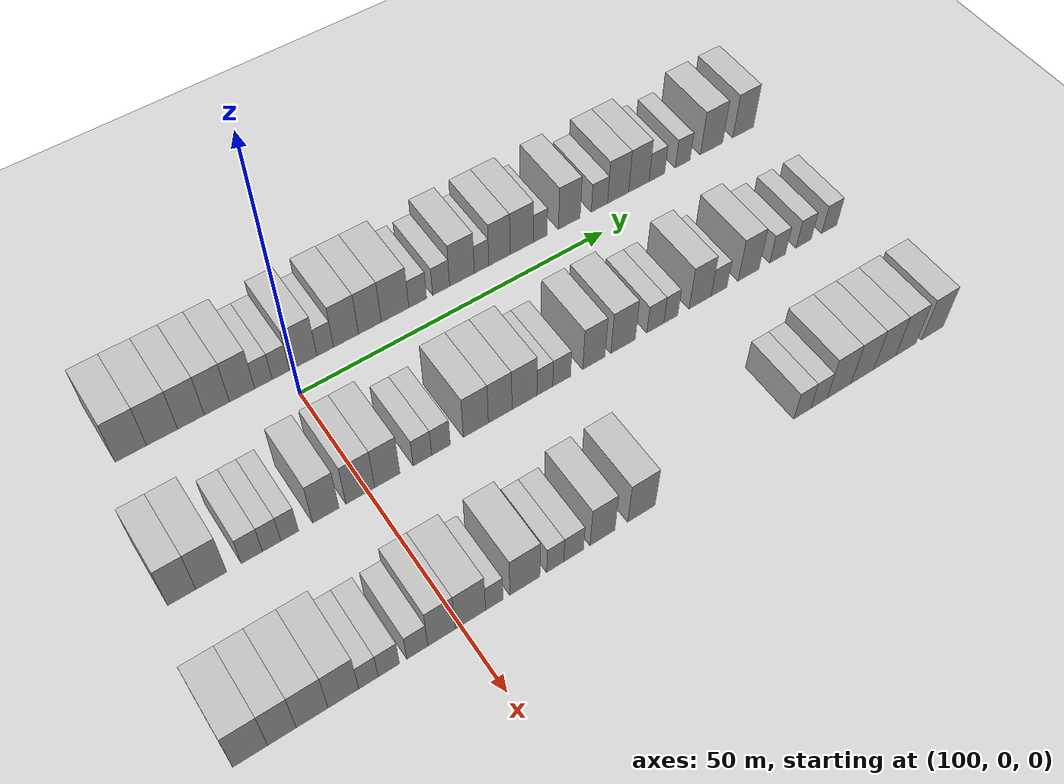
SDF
<sdf version="1.6">
 <world name="default">
  <include>
   <name>ground_plane_2</name>
   <uri>model://HANNAS_ground_plane</uri>
   <pose>100 0 0  0 0 0</pose>
  </include>
  <model name="building_645">
   <static>1</static>
   <pose>91.0000 -22.6242 0 0.000000 0.000000 0.000000</pose>
   <link name="link">
    <pose>0 0 4.50 0 0 0</pose>
    <collision name="collision"><geometry><box><size>10.0000 4.4343 9.0000</size></box></geometry></collision>
    <visual name="visual">
     <cast_shadows>0</cast_shadows>
     <geometry><box><size>10.0000 4.4343 9.0000</size></box></geometry>
     <material>
      <script>
       <uri>model://HANNAS_wall/materials/scripts</uri>
       <uri>model://HANNAS_wall/materials/textures</uri>
       <name>vrc/HANNAS_wall</name>
      </script>
     </material>
    </visual>
   </link>
  </model>
  <model name="building_646">
   <static>1</static>
   <pose>91.0000 -18.1805 0 0.000000 0.000000 0.000000</pose>
   <link name="link">
    <pose>0 0 4.50 0 0 0</pose>
    <collision name="collision"><geometry><box><size>10.0000 4.4532 9.0000</size></box></geometry></collision>
    <visual name="visual">
     <cast_shadows>0</cast_shadows>
     <geometry><box><size>10.0000 4.4532 9.0000</size></box></geometry>
     <material>
      <script>
       <uri>model://HANNAS_wall/materials/scripts</uri>
       <uri>model://HANNAS_wall/materials/textures</uri>
       <name>vrc/HANNAS_wall</name>
      </script>
     </material>
    </visual>
   </link>
  </model>
  <model name="building_647">
   <static>1</static>
   <pose>91.0000 -14.0118 0 0.000000 0.000000 0.000000</pose>
   <link name="link">
    <pose>0 0 4.50 0 0 0</pose>
    <collision name="collision"><geometry><box><size>10.0000 3.8843 9.0000</size></box></geometry></collision>
    <visual name="visual">
     <cast_shadows>0</cast_shadows>
     <geometry><box><size>10.0000 3.8843 9.0000</size></box></geometry>
     <material>
      <script>
       <uri>model://HANNAS_wall/materials/scripts</uri>
       <uri>model://HANNAS_wall/materials/textures</uri>
       <name>vrc/HANNAS_wall</name>
      </script>
     </material>
    </visual>
   </link>
  </model>
  <model name="building_648">
   <static>1</static>
   <pose>91.0000 -10.2283 0 0.000000 0.000000 0.000000</pose>
   <link name="link">
    <pose>0 0 4.50 0 0 0</pose>
    <collision name="collision"><geometry><box><size>10.0000 3.6827 9.0000</size></box></geometry></collision>
    <visual name="visual">
     <cast_shadows>0</cast_shadows>
     <geometry><box><size>10.0000 3.6827 9.0000</size></box></geometry>
     <material>
      <script>
       <uri>model://HANNAS_wall/materials/scripts</uri>
       <uri>model://HANNAS_wall/materials/textures</uri>
       <name>vrc/HANNAS_wall</name>
      </script>
     </material>
    </visual>
   </link>
  </model>
  <model name="building_649">
   <static>1</static>
   <pose>91.0000 -6.4995 0 0.000000 0.000000 0.000000</pose>
   <link name="link">
    <pose>0 0 4.50 0 0 0</pose>
    <collision name="collision"><geometry><box><size>10.0000 3.7747 9.0000</size></box></geometry></collision>
    <visual name="visual">
     <cast_shadows>0</cast_shadows>
     <geometry><box><size>10.0000 3.7747 9.0000</size></box></geometry>
     <material>
      <script>
       <uri>model://HANNAS_wall/materials/scripts</uri>
       <uri>model://HANNAS_wall/materials/textures</uri>
       <name>vrc/HANNAS_wall</name>
      </script>
     </material>
    </visual>
   </link>
  </model>
  <model name="building_650">
   <static>1</static>
   <pose>91.0000 -3.2916 0 0.000000 0.000000 0.000000</pose>
   <link name="link">
    <pose>0 0 3.00 0 0 0</pose>
    <collision name="collision"><geometry><box><size>10.0000 2.6412 6.0000</size></box></geometry></collision>
    <visual name="visual">
     <cast_shadows>0</cast_shadows>
     <geometry><box><size>10.0000 2.6412 6.0000</size></box></geometry>
     <material>
      <script>
       <uri>model://HANNAS_wall/materials/scripts</uri>
       <uri>model://HANNAS_wall/materials/textures</uri>
       <name>vrc/HANNAS_wall</name>
      </script>
     </material>
    </visual>
   </link>
  </model>
  <model name="building_651">
   <static>1</static>
   <pose>91.0000 -0.6502 0 0.000000 0.000000 0.000000</pose>
   <link name="link">
    <pose>0 0 3.00 0 0 0</pose>
    <collision name="collision"><geometry><box><size>10.0000 2.6414 6.0000</size></box></geometry></collision>
    <visual name="visual">
     <cast_shadows>0</cast_shadows>
     <geometry><box><size>10.0000 2.6414 6.0000</size></box></geometry>
     <material>
      <script>
       <uri>model://HANNAS_wall/materials/scripts</uri>
       <uri>model://HANNAS_wall/materials/textures</uri>
       <name>vrc/HANNAS_wall</name>
      </script>
     </material>
    </visual>
   </link>
  </model>
  <model name="building_652">
   <static>1</static>
   <pose>91.0000 2.7775 0 0.000000 0.000000 0.000000</pose>
   <link name="link">
    <pose>0 0 4.50 0 0 0</pose>
    <collision name="collision"><geometry><box><size>10.0000 4.2140 9.0000</size></box></geometry></collision>
    <visual name="visual">
     <cast_shadows>0</cast_shadows>
     <geometry><box><size>10.0000 4.2140 9.0000</size></box></geometry>
     <material>
      <script>
       <uri>model://HANNAS_wall/materials/scripts</uri>
       <uri>model://HANNAS_wall/materials/textures</uri>
       <name>vrc/HANNAS_wall</name>
      </script>
     </material>
    </visual>
   </link>
  </model>
  <model name="building_653">
   <static>1</static>
   <pose>91.0000 6.1783 0 0.000000 0.000000 0.000000</pose>
   <link name="link">
    <pose>0 0 3.00 0 0 0</pose>
    <collision name="collision"><geometry><box><size>10.0000 2.5878 6.0000</size></box></geometry></collision>
    <visual name="visual">
     <cast_shadows>0</cast_shadows>
     <geometry><box><size>10.0000 2.5878 6.0000</size></box></geometry>
     <material>
      <script>
       <uri>model://HANNAS_wall/materials/scripts</uri>
       <uri>model://HANNAS_wall/materials/textures</uri>
       <name>vrc/HANNAS_wall</name>
      </script>
     </material>
    </visual>
   </link>
  </model>
  <model name="building_654">
   <static>1</static>
   <pose>91.0000 9.4447 0 0.000000 0.000000 0.000000</pose>
   <link name="link">
    <pose>0 0 4.50 0 0 0</pose>
    <collision name="collision"><geometry><box><size>10.0000 3.9451 9.0000</size></box></geometry></collision>
    <visual name="visual">
     <cast_shadows>0</cast_shadows>
     <geometry><box><size>10.0000 3.9451 9.0000</size></box></geometry>
     <material>
      <script>
       <uri>model://HANNAS_wall/materials/scripts</uri>
       <uri>model://HANNAS_wall/materials/textures</uri>
       <name>vrc/HANNAS_wall</name>
      </script>
     </material>
    </visual>
   </link>
  </model>
  <model name="building_655">
   <static>1</static>
   <pose>91.0000 13.2239 0 0.000000 0.000000 0.000000</pose>
   <link name="link">
    <pose>0 0 4.50 0 0 0</pose>
    <collision name="collision"><geometry><box><size>10.0000 3.6132 9.0000</size></box></geometry></collision>
    <visual name="visual">
     <cast_shadows>0</cast_shadows>
     <geometry><box><size>10.0000 3.6132 9.0000</size></box></geometry>
     <material>
      <script>
       <uri>model://HANNAS_wall/materials/scripts</uri>
       <uri>model://HANNAS_wall/materials/textures</uri>
       <name>vrc/HANNAS_wall</name>
      </script>
     </material>
    </visual>
   </link>
  </model>
  <model name="building_656">
   <static>1</static>
   <pose>91.0000 17.2620 0 0.000000 0.000000 0.000000</pose>
   <link name="link">
    <pose>0 0 4.50 0 0 0</pose>
    <collision name="collision"><geometry><box><size>10.0000 4.4630 9.0000</size></box></geometry></collision>
    <visual name="visual">
     <cast_shadows>0</cast_shadows>
     <geometry><box><size>10.0000 4.4630 9.0000</size></box></geometry>
     <material>
      <script>
       <uri>model://HANNAS_wall/materials/scripts</uri>
       <uri>model://HANNAS_wall/materials/textures</uri>
       <name>vrc/HANNAS_wall</name>
      </script>
     </material>
    </visual>
   </link>
  </model>
  <model name="building_657">
   <static>1</static>
   <pose>91.0000 20.9484 0 0.000000 0.000000 0.000000</pose>
   <link name="link">
    <pose>0 0 3.00 0 0 0</pose>
    <collision name="collision"><geometry><box><size>10.0000 2.9097 6.0000</size></box></geometry></collision>
    <visual name="visual">
     <cast_shadows>0</cast_shadows>
     <geometry><box><size>10.0000 2.9097 6.0000</size></box></geometry>
     <material>
      <script>
       <uri>model://HANNAS_wall/materials/scripts</uri>
       <uri>model://HANNAS_wall/materials/textures</uri>
       <name>vrc/HANNAS_wall</name>
      </script>
     </material>
    </visual>
   </link>
  </model>
  <model name="building_658">
   <static>1</static>
   <pose>91.0000 24.8088 0 0.000000 0.000000 0.000000</pose>
   <link name="link">
    <pose>0 0 3.00 0 0 0</pose>
    <collision name="collision"><geometry><box><size>10.0000 2.8111 6.0000</size></box></geometry></collision>
    <visual name="visual">
     <cast_shadows>0</cast_shadows>
     <geometry><box><size>10.0000 2.8111 6.0000</size></box></geometry>
     <material>
      <script>
       <uri>model://HANNAS_wall/materials/scripts</uri>
       <uri>model://HANNAS_wall/materials/textures</uri>
       <name>vrc/HANNAS_wall</name>
      </script>
     </material>
    </visual>
   </link>
  </model>
  <model name="building_659">
   <static>1</static>
   <pose>91.0000 28.2891 0 0.000000 0.000000 0.000000</pose>
   <link name="link">
    <pose>0 0 4.50 0 0 0</pose>
    <collision name="collision"><geometry><box><size>10.0000 4.1494 9.0000</size></box></geometry></collision>
    <visual name="visual">
     <cast_shadows>0</cast_shadows>
     <geometry><box><size>10.0000 4.1494 9.0000</size></box></geometry>
     <material>
      <script>
       <uri>model://HANNAS_wall/materials/scripts</uri>
       <uri>model://HANNAS_wall/materials/textures</uri>
       <name>vrc/HANNAS_wall</name>
      </script>
     </material>
    </visual>
   </link>
  </model>
  <model name="building_660">
   <static>1</static>
   <pose>91.0000 31.5917 0 0.000000 0.000000 0.000000</pose>
   <link name="link">
    <pose>0 0 3.00 0 0 0</pose>
    <collision name="collision"><geometry><box><size>10.0000 2.4559 6.0000</size></box></geometry></collision>
    <visual name="visual">
     <cast_shadows>0</cast_shadows>
     <geometry><box><size>10.0000 2.4559 6.0000</size></box></geometry>
     <material>
      <script>
       <uri>model://HANNAS_wall/materials/scripts</uri>
       <uri>model://HANNAS_wall/materials/textures</uri>
       <name>vrc/HANNAS_wall</name>
      </script>
     </material>
    </visual>
   </link>
  </model>
  <model name="building_661">
   <static>1</static>
   <pose>91.0000 34.6213 0 0.000000 0.000000 0.000000</pose>
   <link name="link">
    <pose>0 0 4.50 0 0 0</pose>
    <collision name="collision"><geometry><box><size>10.0000 3.6032 9.0000</size></box></geometry></collision>
    <visual name="visual">
     <cast_shadows>0</cast_shadows>
     <geometry><box><size>10.0000 3.6032 9.0000</size></box></geometry>
     <material>
      <script>
       <uri>model://HANNAS_wall/materials/scripts</uri>
       <uri>model://HANNAS_wall/materials/textures</uri>
       <name>vrc/HANNAS_wall</name>
      </script>
     </material>
    </visual>
   </link>
  </model>
  <model name="building_662">
   <static>1</static>
   <pose>91.0000 38.4493 0 0.000000 0.000000 0.000000</pose>
   <link name="link">
    <pose>0 0 4.50 0 0 0</pose>
    <collision name="collision"><geometry><box><size>10.0000 4.0528 9.0000</size></box></geometry></collision>
    <visual name="visual">
     <cast_shadows>0</cast_shadows>
     <geometry><box><size>10.0000 4.0528 9.0000</size></box></geometry>
     <material>
      <script>
       <uri>model://HANNAS_wall/materials/scripts</uri>
       <uri>model://HANNAS_wall/materials/textures</uri>
       <name>vrc/HANNAS_wall</name>
      </script>
     </material>
    </visual>
   </link>
  </model>
  <model name="building_663">
   <static>1</static>
   <pose>91.0000 41.6828 0 0.000000 0.000000 0.000000</pose>
   <link name="link">
    <pose>0 0 3.00 0 0 0</pose>
    <collision name="collision"><geometry><box><size>10.0000 2.4143 6.0000</size></box></geometry></collision>
    <visual name="visual">
     <cast_shadows>0</cast_shadows>
     <geometry><box><size>10.0000 2.4143 6.0000</size></box></geometry>
     <material>
      <script>
       <uri>model://HANNAS_wall/materials/scripts</uri>
       <uri>model://HANNAS_wall/materials/textures</uri>
       <name>vrc/HANNAS_wall</name>
      </script>
     </material>
    </visual>
   </link>
  </model>
  <model name="building_664">
   <static>1</static>
   <pose>91.0000 46.8229 0 0.000000 0.000000 0.000000</pose>
   <link name="link">
    <pose>0 0 4.50 0 0 0</pose>
    <collision name="collision"><geometry><box><size>10.0000 3.8659 9.0000</size></box></geometry></collision>
    <visual name="visual">
     <cast_shadows>0</cast_shadows>
     <geometry><box><size>10.0000 3.8659 9.0000</size></box></geometry>
     <material>
      <script>
       <uri>model://HANNAS_wall/materials/scripts</uri>
       <uri>model://HANNAS_wall/materials/textures</uri>
       <name>vrc/HANNAS_wall</name>
      </script>
     </material>
    </visual>
   </link>
  </model>
  <model name="building_665">
   <static>1</static>
   <pose>91.0000 52.2358 0 0.000000 0.000000 0.000000</pose>
   <link name="link">
    <pose>0 0 3.00 0 0 0</pose>
    <collision name="collision"><geometry><box><size>10.0000 2.9599 6.0000</size></box></geometry></collision>
    <visual name="visual">
     <cast_shadows>0</cast_shadows>
     <geometry><box><size>10.0000 2.9599 6.0000</size></box></geometry>
     <material>
      <script>
       <uri>model://HANNAS_wall/materials/scripts</uri>
       <uri>model://HANNAS_wall/materials/textures</uri>
       <name>vrc/HANNAS_wall</name>
      </script>
     </material>
    </visual>
   </link>
  </model>
  <model name="building_666">
   <static>1</static>
   <pose>91.0000 55.6468 0 0.000000 0.000000 0.000000</pose>
   <link name="link">
    <pose>0 0 4.50 0 0 0</pose>
    <collision name="collision"><geometry><box><size>10.0000 3.8621 9.0000</size></box></geometry></collision>
    <visual name="visual">
     <cast_shadows>0</cast_shadows>
     <geometry><box><size>10.0000 3.8621 9.0000</size></box></geometry>
     <material>
      <script>
       <uri>model://HANNAS_wall/materials/scripts</uri>
       <uri>model://HANNAS_wall/materials/textures</uri>
       <name>vrc/HANNAS_wall</name>
      </script>
     </material>
    </visual>
   </link>
  </model>
  <model name="building_667">
   <static>1</static>
   <pose>91.0000 59.4637 0 0.000000 0.000000 0.000000</pose>
   <link name="link">
    <pose>0 0 4.50 0 0 0</pose>
    <collision name="collision"><geometry><box><size>10.0000 3.7717 9.0000</size></box></geometry></collision>
    <visual name="visual">
     <cast_shadows>0</cast_shadows>
     <geometry><box><size>10.0000 3.7717 9.0000</size></box></geometry>
     <material>
      <script>
       <uri>model://HANNAS_wall/materials/scripts</uri>
       <uri>model://HANNAS_wall/materials/textures</uri>
       <name>vrc/HANNAS_wall</name>
      </script>
     </material>
    </visual>
   </link>
  </model>
  <model name="building_668">
   <static>1</static>
   <pose>91.0000 62.8185 0 0.000000 0.000000 0.000000</pose>
   <link name="link">
    <pose>0 0 3.00 0 0 0</pose>
    <collision name="collision"><geometry><box><size>10.0000 2.9378 6.0000</size></box></geometry></collision>
    <visual name="visual">
     <cast_shadows>0</cast_shadows>
     <geometry><box><size>10.0000 2.9378 6.0000</size></box></geometry>
     <material>
      <script>
       <uri>model://HANNAS_wall/materials/scripts</uri>
       <uri>model://HANNAS_wall/materials/textures</uri>
       <name>vrc/HANNAS_wall</name>
      </script>
     </material>
    </visual>
   </link>
  </model>
  <model name="building_669">
   <static>1</static>
   <pose>91.0000 67.6975 0 0.000000 0.000000 0.000000</pose>
   <link name="link">
    <pose>0 0 3.00 0 0 0</pose>
    <collision name="collision"><geometry><box><size>10.0000 2.8201 6.0000</size></box></geometry></collision>
    <visual name="visual">
     <cast_shadows>0</cast_shadows>
     <geometry><box><size>10.0000 2.8201 6.0000</size></box></geometry>
     <material>
      <script>
       <uri>model://HANNAS_wall/materials/scripts</uri>
       <uri>model://HANNAS_wall/materials/textures</uri>
       <name>vrc/HANNAS_wall</name>
      </script>
     </material>
    </visual>
   </link>
  </model>
  <model name="building_670">
   <static>1</static>
   <pose>91.0000 73.2511 0 0.000000 0.000000 0.000000</pose>
   <link name="link">
    <pose>0 0 4.50 0 0 0</pose>
    <collision name="collision"><geometry><box><size>10.0000 4.2871 9.0000</size></box></geometry></collision>
    <visual name="visual">
     <cast_shadows>0</cast_shadows>
     <geometry><box><size>10.0000 4.2871 9.0000</size></box></geometry>
     <material>
      <script>
       <uri>model://HANNAS_wall/materials/scripts</uri>
       <uri>model://HANNAS_wall/materials/textures</uri>
       <name>vrc/HANNAS_wall</name>
      </script>
     </material>
    </visual>
   </link>
  </model>
  <model name="building_671">
   <static>1</static>
   <pose>91.0000 79.4225 0 0.000000 0.000000 0.000000</pose>
   <link name="link">
    <pose>0 0 4.50 0 0 0</pose>
    <collision name="collision"><geometry><box><size>10.0000 4.0556 9.0000</size></box></geometry></collision>
    <visual name="visual">
     <cast_shadows>0</cast_shadows>
     <geometry><box><size>10.0000 4.0556 9.0000</size></box></geometry>
     <material>
      <script>
       <uri>model://HANNAS_wall/materials/scripts</uri>
       <uri>model://HANNAS_wall/materials/textures</uri>
       <name>vrc/HANNAS_wall</name>
      </script>
     </material>
    </visual>
   </link>
  </model>
  <model name="building_840">
   <static>1</static>
   <pose>113.0000 -26.0639 0 0.000000 0.000000 0.000000</pose>
   <link name="link">
    <pose>0 0 4.50 0 0 0</pose>
    <collision name="collision"><geometry><box><size>10.0000 3.7825 9.0000</size></box></geometry></collision>
    <visual name="visual">
     <cast_shadows>0</cast_shadows>
     <geometry><box><size>10.0000 3.7825 9.0000</size></box></geometry>
     <material>
      <script>
       <uri>model://HANNAS_wall/materials/scripts</uri>
       <uri>model://HANNAS_wall/materials/textures</uri>
       <name>vrc/HANNAS_wall</name>
      </script>
     </material>
    </visual>
   </link>
  </model>
  <model name="building_841">
   <static>1</static>
   <pose>113.0000 -22.0824 0 0.000000 0.000000 0.000000</pose>
   <link name="link">
    <pose>0 0 4.50 0 0 0</pose>
    <collision name="collision"><geometry><box><size>10.0000 4.1805 9.0000</size></box></geometry></collision>
    <visual name="visual">
     <cast_shadows>0</cast_shadows>
     <geometry><box><size>10.0000 4.1805 9.0000</size></box></geometry>
     <material>
      <script>
       <uri>model://HANNAS_wall/materials/scripts</uri>
       <uri>model://HANNAS_wall/materials/textures</uri>
       <name>vrc/HANNAS_wall</name>
      </script>
     </material>
    </visual>
   </link>
  </model>
  <model name="building_842">
   <static>1</static>
   <pose>113.0000 -16.5319 0 0.000000 0.000000 0.000000</pose>
   <link name="link">
    <pose>0 0 3.00 0 0 0</pose>
    <collision name="collision"><geometry><box><size>10.0000 2.9205 6.0000</size></box></geometry></collision>
    <visual name="visual">
     <cast_shadows>0</cast_shadows>
     <geometry><box><size>10.0000 2.9205 6.0000</size></box></geometry>
     <material>
      <script>
       <uri>model://HANNAS_wall/materials/scripts</uri>
       <uri>model://HANNAS_wall/materials/textures</uri>
       <name>vrc/HANNAS_wall</name>
      </script>
     </material>
    </visual>
   </link>
  </model>
  <model name="building_843">
   <static>1</static>
   <pose>113.0000 -13.7778 0 0.000000 0.000000 0.000000</pose>
   <link name="link">
    <pose>0 0 3.00 0 0 0</pose>
    <collision name="collision"><geometry><box><size>10.0000 2.5877 6.0000</size></box></geometry></collision>
    <visual name="visual">
     <cast_shadows>0</cast_shadows>
     <geometry><box><size>10.0000 2.5877 6.0000</size></box></geometry>
     <material>
      <script>
       <uri>model://HANNAS_wall/materials/scripts</uri>
       <uri>model://HANNAS_wall/materials/textures</uri>
       <name>vrc/HANNAS_wall</name>
      </script>
     </material>
    </visual>
   </link>
  </model>
  <model name="building_844">
   <static>1</static>
   <pose>113.0000 -11.2317 0 0.000000 0.000000 0.000000</pose>
   <link name="link">
    <pose>0 0 3.00 0 0 0</pose>
    <collision name="collision"><geometry><box><size>10.0000 2.5044 6.0000</size></box></geometry></collision>
    <visual name="visual">
     <cast_shadows>0</cast_shadows>
     <geometry><box><size>10.0000 2.5044 6.0000</size></box></geometry>
     <material>
      <script>
       <uri>model://HANNAS_wall/materials/scripts</uri>
       <uri>model://HANNAS_wall/materials/textures</uri>
       <name>vrc/HANNAS_wall</name>
      </script>
     </material>
    </visual>
   </link>
  </model>
  <model name="building_845">
   <static>1</static>
   <pose>113.0000 -6.0834 0 0.000000 0.000000 0.000000</pose>
   <link name="link">
    <pose>0 0 4.50 0 0 0</pose>
    <collision name="collision"><geometry><box><size>10.0000 3.7922 9.0000</size></box></geometry></collision>
    <visual name="visual">
     <cast_shadows>0</cast_shadows>
     <geometry><box><size>10.0000 3.7922 9.0000</size></box></geometry>
     <material>
      <script>
       <uri>model://HANNAS_wall/materials/scripts</uri>
       <uri>model://HANNAS_wall/materials/textures</uri>
       <name>vrc/HANNAS_wall</name>
      </script>
     </material>
    </visual>
   </link>
  </model>
  <model name="building_846">
   <static>1</static>
   <pose>113.0000 -1.0791 0 0.000000 0.000000 0.000000</pose>
   <link name="link">
    <pose>0 0 4.50 0 0 0</pose>
    <collision name="collision"><geometry><box><size>10.0000 4.2164 9.0000</size></box></geometry></collision>
    <visual name="visual">
     <cast_shadows>0</cast_shadows>
     <geometry><box><size>10.0000 4.2164 9.0000</size></box></geometry>
     <material>
      <script>
       <uri>model://HANNAS_wall/materials/scripts</uri>
       <uri>model://HANNAS_wall/materials/textures</uri>
       <name>vrc/HANNAS_wall</name>
      </script>
     </material>
    </visual>
   </link>
  </model>
  <model name="building_847">
   <static>1</static>
   <pose>113.0000 2.9014 0 0.000000 0.000000 0.000000</pose>
   <link name="link">
    <pose>0 0 4.50 0 0 0</pose>
    <collision name="collision"><geometry><box><size>10.0000 3.7446 9.0000</size></box></geometry></collision>
    <visual name="visual">
     <cast_shadows>0</cast_shadows>
     <geometry><box><size>10.0000 3.7446 9.0000</size></box></geometry>
     <material>
      <script>
       <uri>model://HANNAS_wall/materials/scripts</uri>
       <uri>model://HANNAS_wall/materials/textures</uri>
       <name>vrc/HANNAS_wall</name>
      </script>
     </material>
    </visual>
   </link>
  </model>
  <model name="building_848">
   <static>1</static>
   <pose>113.0000 8.1807 0 0.000000 0.000000 0.000000</pose>
   <link name="link">
    <pose>0 0 3.00 0 0 0</pose>
    <collision name="collision"><geometry><box><size>10.0000 2.8140 6.0000</size></box></geometry></collision>
    <visual name="visual">
     <cast_shadows>0</cast_shadows>
     <geometry><box><size>10.0000 2.8140 6.0000</size></box></geometry>
     <material>
      <script>
       <uri>model://HANNAS_wall/materials/scripts</uri>
       <uri>model://HANNAS_wall/materials/textures</uri>
       <name>vrc/HANNAS_wall</name>
      </script>
     </material>
    </visual>
   </link>
  </model>
  <model name="building_849">
   <static>1</static>
   <pose>113.0000 11.0152 0 0.000000 0.000000 0.000000</pose>
   <link name="link">
    <pose>0 0 3.00 0 0 0</pose>
    <collision name="collision"><geometry><box><size>10.0000 2.8550 6.0000</size></box></geometry></collision>
    <visual name="visual">
     <cast_shadows>0</cast_shadows>
     <geometry><box><size>10.0000 2.8550 6.0000</size></box></geometry>
     <material>
      <script>
       <uri>model://HANNAS_wall/materials/scripts</uri>
       <uri>model://HANNAS_wall/materials/textures</uri>
       <name>vrc/HANNAS_wall</name>
      </script>
     </material>
    </visual>
   </link>
  </model>
  <model name="building_850">
   <static>1</static>
   <pose>113.0000 16.3915 0 0.000000 0.000000 0.000000</pose>
   <link name="link">
    <pose>0 0 4.50 0 0 0</pose>
    <collision name="collision"><geometry><box><size>10.0000 3.8977 9.0000</size></box></geometry></collision>
    <visual name="visual">
     <cast_shadows>0</cast_shadows>
     <geometry><box><size>10.0000 3.8977 9.0000</size></box></geometry>
     <material>
      <script>
       <uri>model://HANNAS_wall/materials/scripts</uri>
       <uri>model://HANNAS_wall/materials/textures</uri>
       <name>vrc/HANNAS_wall</name>
      </script>
     </material>
    </visual>
   </link>
  </model>
  <model name="building_851">
   <static>1</static>
   <pose>113.0000 20.2063 0 0.000000 0.000000 0.000000</pose>
   <link name="link">
    <pose>0 0 4.50 0 0 0</pose>
    <collision name="collision"><geometry><box><size>10.0000 3.7317 9.0000</size></box></geometry></collision>
    <visual name="visual">
     <cast_shadows>0</cast_shadows>
     <geometry><box><size>10.0000 3.7317 9.0000</size></box></geometry>
     <material>
      <script>
       <uri>model://HANNAS_wall/materials/scripts</uri>
       <uri>model://HANNAS_wall/materials/textures</uri>
       <name>vrc/HANNAS_wall</name>
      </script>
     </material>
    </visual>
   </link>
  </model>
  <model name="building_852">
   <static>1</static>
   <pose>113.0000 24.0678 0 0.000000 0.000000 0.000000</pose>
   <link name="link">
    <pose>0 0 4.50 0 0 0</pose>
    <collision name="collision"><geometry><box><size>10.0000 3.9912 9.0000</size></box></geometry></collision>
    <visual name="visual">
     <cast_shadows>0</cast_shadows>
     <geometry><box><size>10.0000 3.9912 9.0000</size></box></geometry>
     <material>
      <script>
       <uri>model://HANNAS_wall/materials/scripts</uri>
       <uri>model://HANNAS_wall/materials/textures</uri>
       <name>vrc/HANNAS_wall</name>
      </script>
     </material>
    </visual>
   </link>
  </model>
  <model name="building_853">
   <static>1</static>
   <pose>113.0000 27.3508 0 0.000000 0.000000 0.000000</pose>
   <link name="link">
    <pose>0 0 3.00 0 0 0</pose>
    <collision name="collision"><geometry><box><size>10.0000 2.5749 6.0000</size></box></geometry></collision>
    <visual name="visual">
     <cast_shadows>0</cast_shadows>
     <geometry><box><size>10.0000 2.5749 6.0000</size></box></geometry>
     <material>
      <script>
       <uri>model://HANNAS_wall/materials/scripts</uri>
       <uri>model://HANNAS_wall/materials/textures</uri>
       <name>vrc/HANNAS_wall</name>
      </script>
     </material>
    </visual>
   </link>
  </model>
  <model name="building_854">
   <static>1</static>
   <pose>113.0000 30.0976 0 0.000000 0.000000 0.000000</pose>
   <link name="link">
    <pose>0 0 3.00 0 0 0</pose>
    <collision name="collision"><geometry><box><size>10.0000 2.9187 6.0000</size></box></geometry></collision>
    <visual name="visual">
     <cast_shadows>0</cast_shadows>
     <geometry><box><size>10.0000 2.9187 6.0000</size></box></geometry>
     <material>
      <script>
       <uri>model://HANNAS_wall/materials/scripts</uri>
       <uri>model://HANNAS_wall/materials/textures</uri>
       <name>vrc/HANNAS_wall</name>
      </script>
     </material>
    </visual>
   </link>
  </model>
  <model name="building_855">
   <static>1</static>
   <pose>113.0000 35.4118 0 0.000000 0.000000 0.000000</pose>
   <link name="link">
    <pose>0 0 4.50 0 0 0</pose>
    <collision name="collision"><geometry><box><size>10.0000 3.7098 9.0000</size></box></geometry></collision>
    <visual name="visual">
     <cast_shadows>0</cast_shadows>
     <geometry><box><size>10.0000 3.7098 9.0000</size></box></geometry>
     <material>
      <script>
       <uri>model://HANNAS_wall/materials/scripts</uri>
       <uri>model://HANNAS_wall/materials/textures</uri>
       <name>vrc/HANNAS_wall</name>
      </script>
     </material>
    </visual>
   </link>
  </model>
  <model name="building_856">
   <static>1</static>
   <pose>113.0000 40.3268 0 0.000000 0.000000 0.000000</pose>
   <link name="link">
    <pose>0 0 4.50 0 0 0</pose>
    <collision name="collision"><geometry><box><size>10.0000 4.1201 9.0000</size></box></geometry></collision>
    <visual name="visual">
     <cast_shadows>0</cast_shadows>
     <geometry><box><size>10.0000 4.1201 9.0000</size></box></geometry>
     <material>
      <script>
       <uri>model://HANNAS_wall/materials/scripts</uri>
       <uri>model://HANNAS_wall/materials/textures</uri>
       <name>vrc/HANNAS_wall</name>
      </script>
     </material>
    </visual>
   </link>
  </model>
  <model name="building_857">
   <static>1</static>
   <pose>113.0000 45.8501 0 0.000000 0.000000 0.000000</pose>
   <link name="link">
    <pose>0 0 3.00 0 0 0</pose>
    <collision name="collision"><geometry><box><size>10.0000 2.9265 6.0000</size></box></geometry></collision>
    <visual name="visual">
     <cast_shadows>0</cast_shadows>
     <geometry><box><size>10.0000 2.9265 6.0000</size></box></geometry>
     <material>
      <script>
       <uri>model://HANNAS_wall/materials/scripts</uri>
       <uri>model://HANNAS_wall/materials/textures</uri>
       <name>vrc/HANNAS_wall</name>
      </script>
     </material>
    </visual>
   </link>
  </model>
  <model name="building_858">
   <static>1</static>
   <pose>113.0000 48.5241 0 0.000000 0.000000 0.000000</pose>
   <link name="link">
    <pose>0 0 3.00 0 0 0</pose>
    <collision name="collision"><geometry><box><size>10.0000 2.4214 6.0000</size></box></geometry></collision>
    <visual name="visual">
     <cast_shadows>0</cast_shadows>
     <geometry><box><size>10.0000 2.4214 6.0000</size></box></geometry>
     <material>
      <script>
       <uri>model://HANNAS_wall/materials/scripts</uri>
       <uri>model://HANNAS_wall/materials/textures</uri>
       <name>vrc/HANNAS_wall</name>
      </script>
     </material>
    </visual>
   </link>
  </model>
  <model name="building_859">
   <static>1</static>
   <pose>113.0000 53.6849 0 0.000000 0.000000 0.000000</pose>
   <link name="link">
    <pose>0 0 4.50 0 0 0</pose>
    <collision name="collision"><geometry><box><size>10.0000 3.9001 9.0000</size></box></geometry></collision>
    <visual name="visual">
     <cast_shadows>0</cast_shadows>
     <geometry><box><size>10.0000 3.9001 9.0000</size></box></geometry>
     <material>
      <script>
       <uri>model://HANNAS_wall/materials/scripts</uri>
       <uri>model://HANNAS_wall/materials/textures</uri>
       <name>vrc/HANNAS_wall</name>
      </script>
     </material>
    </visual>
   </link>
  </model>
  <model name="building_860">
   <static>1</static>
   <pose>113.0000 57.0646 0 0.000000 0.000000 0.000000</pose>
   <link name="link">
    <pose>0 0 3.00 0 0 0</pose>
    <collision name="collision"><geometry><box><size>10.0000 2.8593 6.0000</size></box></geometry></collision>
    <visual name="visual">
     <cast_shadows>0</cast_shadows>
     <geometry><box><size>10.0000 2.8593 6.0000</size></box></geometry>
     <material>
      <script>
       <uri>model://HANNAS_wall/materials/scripts</uri>
       <uri>model://HANNAS_wall/materials/textures</uri>
       <name>vrc/HANNAS_wall</name>
      </script>
     </material>
    </visual>
   </link>
  </model>
  <model name="building_861">
   <static>1</static>
   <pose>113.0000 62.4047 0 0.000000 0.000000 0.000000</pose>
   <link name="link">
    <pose>0 0 4.50 0 0 0</pose>
    <collision name="collision"><geometry><box><size>10.0000 3.8210 9.0000</size></box></geometry></collision>
    <visual name="visual">
     <cast_shadows>0</cast_shadows>
     <geometry><box><size>10.0000 3.8210 9.0000</size></box></geometry>
     <material>
      <script>
       <uri>model://HANNAS_wall/materials/scripts</uri>
       <uri>model://HANNAS_wall/materials/textures</uri>
       <name>vrc/HANNAS_wall</name>
      </script>
     </material>
    </visual>
   </link>
  </model>
  <model name="building_862">
   <static>1</static>
   <pose>113.0000 67.7725 0 0.000000 0.000000 0.000000</pose>
   <link name="link">
    <pose>0 0 3.00 0 0 0</pose>
    <collision name="collision"><geometry><box><size>10.0000 2.9146 6.0000</size></box></geometry></collision>
    <visual name="visual">
     <cast_shadows>0</cast_shadows>
     <geometry><box><size>10.0000 2.9146 6.0000</size></box></geometry>
     <material>
      <script>
       <uri>model://HANNAS_wall/materials/scripts</uri>
       <uri>model://HANNAS_wall/materials/textures</uri>
       <name>vrc/HANNAS_wall</name>
      </script>
     </material>
    </visual>
   </link>
  </model>
  <model name="building_863">
   <static>1</static>
   <pose>113.0000 72.6556 0 0.000000 0.000000 0.000000</pose>
   <link name="link">
    <pose>0 0 3.00 0 0 0</pose>
    <collision name="collision"><geometry><box><size>10.0000 2.8517 6.0000</size></box></geometry></collision>
    <visual name="visual">
     <cast_shadows>0</cast_shadows>
     <geometry><box><size>10.0000 2.8517 6.0000</size></box></geometry>
     <material>
      <script>
       <uri>model://HANNAS_wall/materials/scripts</uri>
       <uri>model://HANNAS_wall/materials/textures</uri>
       <name>vrc/HANNAS_wall</name>
      </script>
     </material>
    </visual>
   </link>
  </model>
  <model name="building_864">
   <static>1</static>
   <pose>113.0000 77.5298 0 0.000000 0.000000 0.000000</pose>
   <link name="link">
    <pose>0 0 3.00 0 0 0</pose>
    <collision name="collision"><geometry><box><size>10.0000 2.8967 6.0000</size></box></geometry></collision>
    <visual name="visual">
     <cast_shadows>0</cast_shadows>
     <geometry><box><size>10.0000 2.8967 6.0000</size></box></geometry>
     <material>
      <script>
       <uri>model://HANNAS_wall/materials/scripts</uri>
       <uri>model://HANNAS_wall/materials/textures</uri>
       <name>vrc/HANNAS_wall</name>
      </script>
     </material>
    </visual>
   </link>
  </model>
  <model name="building_1028">
   <static>1</static>
   <pose>135.0000 -28.2466 0 0.000000 0.000000 0.000000</pose>
   <link name="link">
    <pose>0 0 4.50 0 0 0</pose>
    <collision name="collision"><geometry><box><size>10.0000 4.4354 9.0000</size></box></geometry></collision>
    <visual name="visual">
     <cast_shadows>0</cast_shadows>
     <geometry><box><size>10.0000 4.4354 9.0000</size></box></geometry>
     <material>
      <script>
       <uri>model://HANNAS_wall/materials/scripts</uri>
       <uri>model://HANNAS_wall/materials/textures</uri>
       <name>vrc/HANNAS_wall</name>
      </script>
     </material>
    </visual>
   </link>
  </model>
  <model name="building_1029">
   <static>1</static>
   <pose>135.0000 -24.1785 0 0.000000 0.000000 0.000000</pose>
   <link name="link">
    <pose>0 0 4.50 0 0 0</pose>
    <collision name="collision"><geometry><box><size>10.0000 3.7009 9.0000</size></box></geometry></collision>
    <visual name="visual">
     <cast_shadows>0</cast_shadows>
     <geometry><box><size>10.0000 3.7009 9.0000</size></box></geometry>
     <material>
      <script>
       <uri>model://HANNAS_wall/materials/scripts</uri>
       <uri>model://HANNAS_wall/materials/textures</uri>
       <name>vrc/HANNAS_wall</name>
      </script>
     </material>
    </visual>
   </link>
  </model>
  <model name="building_1030">
   <static>1</static>
   <pose>135.0000 -20.2422 0 0.000000 0.000000 0.000000</pose>
   <link name="link">
    <pose>0 0 4.50 0 0 0</pose>
    <collision name="collision"><geometry><box><size>10.0000 4.1717 9.0000</size></box></geometry></collision>
    <visual name="visual">
     <cast_shadows>0</cast_shadows>
     <geometry><box><size>10.0000 4.1717 9.0000</size></box></geometry>
     <material>
      <script>
       <uri>model://HANNAS_wall/materials/scripts</uri>
       <uri>model://HANNAS_wall/materials/textures</uri>
       <name>vrc/HANNAS_wall</name>
      </script>
     </material>
    </visual>
   </link>
  </model>
  <model name="building_1031">
   <static>1</static>
   <pose>135.0000 -16.1112 0 0.000000 0.000000 0.000000</pose>
   <link name="link">
    <pose>0 0 4.50 0 0 0</pose>
    <collision name="collision"><geometry><box><size>10.0000 4.0903 9.0000</size></box></geometry></collision>
    <visual name="visual">
     <cast_shadows>0</cast_shadows>
     <geometry><box><size>10.0000 4.0903 9.0000</size></box></geometry>
     <material>
      <script>
       <uri>model://HANNAS_wall/materials/scripts</uri>
       <uri>model://HANNAS_wall/materials/textures</uri>
       <name>vrc/HANNAS_wall</name>
      </script>
     </material>
    </visual>
   </link>
  </model>
  <model name="building_1032">
   <static>1</static>
   <pose>135.0000 -12.7535 0 0.000000 0.000000 0.000000</pose>
   <link name="link">
    <pose>0 0 3.00 0 0 0</pose>
    <collision name="collision"><geometry><box><size>10.0000 2.6251 6.0000</size></box></geometry></collision>
    <visual name="visual">
     <cast_shadows>0</cast_shadows>
     <geometry><box><size>10.0000 2.6251 6.0000</size></box></geometry>
     <material>
      <script>
       <uri>model://HANNAS_wall/materials/scripts</uri>
       <uri>model://HANNAS_wall/materials/textures</uri>
       <name>vrc/HANNAS_wall</name>
      </script>
     </material>
    </visual>
   </link>
  </model>
  <model name="building_1033">
   <static>1</static>
   <pose>135.0000 -9.9920 0 0.000000 0.000000 0.000000</pose>
   <link name="link">
    <pose>0 0 3.00 0 0 0</pose>
    <collision name="collision"><geometry><box><size>10.0000 2.8979 6.0000</size></box></geometry></collision>
    <visual name="visual">
     <cast_shadows>0</cast_shadows>
     <geometry><box><size>10.0000 2.8979 6.0000</size></box></geometry>
     <material>
      <script>
       <uri>model://HANNAS_wall/materials/scripts</uri>
       <uri>model://HANNAS_wall/materials/textures</uri>
       <name>vrc/HANNAS_wall</name>
      </script>
     </material>
    </visual>
   </link>
  </model>
  <model name="building_1034">
   <static>1</static>
   <pose>135.0000 -6.0859 0 0.000000 0.000000 0.000000</pose>
   <link name="link">
    <pose>0 0 3.00 0 0 0</pose>
    <collision name="collision"><geometry><box><size>10.0000 2.9143 6.0000</size></box></geometry></collision>
    <visual name="visual">
     <cast_shadows>0</cast_shadows>
     <geometry><box><size>10.0000 2.9143 6.0000</size></box></geometry>
     <material>
      <script>
       <uri>model://HANNAS_wall/materials/scripts</uri>
       <uri>model://HANNAS_wall/materials/textures</uri>
       <name>vrc/HANNAS_wall</name>
      </script>
     </material>
    </visual>
   </link>
  </model>
  <model name="building_1035">
   <static>1</static>
   <pose>135.0000 -2.7107 0 0.000000 0.000000 0.000000</pose>
   <link name="link">
    <pose>0 0 4.50 0 0 0</pose>
    <collision name="collision"><geometry><box><size>10.0000 3.8362 9.0000</size></box></geometry></collision>
    <visual name="visual">
     <cast_shadows>0</cast_shadows>
     <geometry><box><size>10.0000 3.8362 9.0000</size></box></geometry>
     <material>
      <script>
       <uri>model://HANNAS_wall/materials/scripts</uri>
       <uri>model://HANNAS_wall/materials/textures</uri>
       <name>vrc/HANNAS_wall</name>
      </script>
     </material>
    </visual>
   </link>
  </model>
  <model name="building_1036">
   <static>1</static>
   <pose>135.0000 1.3786 0 0.000000 0.000000 0.000000</pose>
   <link name="link">
    <pose>0 0 4.50 0 0 0</pose>
    <collision name="collision"><geometry><box><size>10.0000 4.3423 9.0000</size></box></geometry></collision>
    <visual name="visual">
     <cast_shadows>0</cast_shadows>
     <geometry><box><size>10.0000 4.3423 9.0000</size></box></geometry>
     <material>
      <script>
       <uri>model://HANNAS_wall/materials/scripts</uri>
       <uri>model://HANNAS_wall/materials/textures</uri>
       <name>vrc/HANNAS_wall</name>
      </script>
     </material>
    </visual>
   </link>
  </model>
  <model name="building_1037">
   <static>1</static>
   <pose>135.0000 4.8020 0 0.000000 0.000000 0.000000</pose>
   <link name="link">
    <pose>0 0 3.00 0 0 0</pose>
    <collision name="collision"><geometry><box><size>10.0000 2.5045 6.0000</size></box></geometry></collision>
    <visual name="visual">
     <cast_shadows>0</cast_shadows>
     <geometry><box><size>10.0000 2.5045 6.0000</size></box></geometry>
     <material>
      <script>
       <uri>model://HANNAS_wall/materials/scripts</uri>
       <uri>model://HANNAS_wall/materials/textures</uri>
       <name>vrc/HANNAS_wall</name>
      </script>
     </material>
    </visual>
   </link>
  </model>
  <model name="building_1038">
   <static>1</static>
   <pose>135.0000 9.2682 0 0.000000 0.000000 0.000000</pose>
   <link name="link">
    <pose>0 0 4.50 0 0 0</pose>
    <collision name="collision"><geometry><box><size>10.0000 4.4279 9.0000</size></box></geometry></collision>
    <visual name="visual">
     <cast_shadows>0</cast_shadows>
     <geometry><box><size>10.0000 4.4279 9.0000</size></box></geometry>
     <material>
      <script>
       <uri>model://HANNAS_wall/materials/scripts</uri>
       <uri>model://HANNAS_wall/materials/textures</uri>
       <name>vrc/HANNAS_wall</name>
      </script>
     </material>
    </visual>
   </link>
  </model>
  <model name="building_1039">
   <static>1</static>
   <pose>135.0000 13.7530 0 0.000000 0.000000 0.000000</pose>
   <link name="link">
    <pose>0 0 3.00 0 0 0</pose>
    <collision name="collision"><geometry><box><size>10.0000 2.5416 6.0000</size></box></geometry></collision>
    <visual name="visual">
     <cast_shadows>0</cast_shadows>
     <geometry><box><size>10.0000 2.5416 6.0000</size></box></geometry>
     <material>
      <script>
       <uri>model://HANNAS_wall/materials/scripts</uri>
       <uri>model://HANNAS_wall/materials/textures</uri>
       <name>vrc/HANNAS_wall</name>
      </script>
     </material>
    </visual>
   </link>
  </model>
  <model name="building_1040">
   <static>1</static>
   <pose>135.0000 16.5198 0 0.000000 0.000000 0.000000</pose>
   <link name="link">
    <pose>0 0 3.00 0 0 0</pose>
    <collision name="collision"><geometry><box><size>10.0000 2.9920 6.0000</size></box></geometry></collision>
    <visual name="visual">
     <cast_shadows>0</cast_shadows>
     <geometry><box><size>10.0000 2.9920 6.0000</size></box></geometry>
     <material>
      <script>
       <uri>model://HANNAS_wall/materials/scripts</uri>
       <uri>model://HANNAS_wall/materials/textures</uri>
       <name>vrc/HANNAS_wall</name>
      </script>
     </material>
    </visual>
   </link>
  </model>
  <model name="building_1041">
   <static>1</static>
   <pose>135.0000 20.9233 0 0.000000 0.000000 0.000000</pose>
   <link name="link">
    <pose>0 0 4.50 0 0 0</pose>
    <collision name="collision"><geometry><box><size>10.0000 3.8150 9.0000</size></box></geometry></collision>
    <visual name="visual">
     <cast_shadows>0</cast_shadows>
     <geometry><box><size>10.0000 3.8150 9.0000</size></box></geometry>
     <material>
      <script>
       <uri>model://HANNAS_wall/materials/scripts</uri>
       <uri>model://HANNAS_wall/materials/textures</uri>
       <name>vrc/HANNAS_wall</name>
      </script>
     </material>
    </visual>
   </link>
  </model>
  <model name="building_1042">
   <static>1</static>
   <pose>135.0000 26.9795 0 0.000000 0.000000 0.000000</pose>
   <link name="link">
    <pose>0 0 4.50 0 0 0</pose>
    <collision name="collision"><geometry><box><size>10.0000 4.2974 9.0000</size></box></geometry></collision>
    <visual name="visual">
     <cast_shadows>0</cast_shadows>
     <geometry><box><size>10.0000 4.2974 9.0000</size></box></geometry>
     <material>
      <script>
       <uri>model://HANNAS_wall/materials/scripts</uri>
       <uri>model://HANNAS_wall/materials/textures</uri>
       <name>vrc/HANNAS_wall</name>
      </script>
     </material>
    </visual>
   </link>
  </model>
  <model name="building_1043">
   <static>1</static>
   <pose>135.0000 53.5167 0 0.000000 0.000000 0.000000</pose>
   <link name="link">
    <pose>0 0 3.00 0 0 0</pose>
    <collision name="collision"><geometry><box><size>10.0000 2.9257 6.0000</size></box></geometry></collision>
    <visual name="visual">
     <cast_shadows>0</cast_shadows>
     <geometry><box><size>10.0000 2.9257 6.0000</size></box></geometry>
     <material>
      <script>
       <uri>model://HANNAS_wall/materials/scripts</uri>
       <uri>model://HANNAS_wall/materials/textures</uri>
       <name>vrc/HANNAS_wall</name>
      </script>
     </material>
    </visual>
   </link>
  </model>
  <model name="building_1044">
   <static>1</static>
   <pose>135.0000 56.3964 0 0.000000 0.000000 0.000000</pose>
   <link name="link">
    <pose>0 0 3.00 0 0 0</pose>
    <collision name="collision"><geometry><box><size>10.0000 2.8337 6.0000</size></box></geometry></collision>
    <visual name="visual">
     <cast_shadows>0</cast_shadows>
     <geometry><box><size>10.0000 2.8337 6.0000</size></box></geometry>
     <material>
      <script>
       <uri>model://HANNAS_wall/materials/scripts</uri>
       <uri>model://HANNAS_wall/materials/textures</uri>
       <name>vrc/HANNAS_wall</name>
      </script>
     </material>
    </visual>
   </link>
  </model>
  <model name="building_1045">
   <static>1</static>
   <pose>135.0000 59.9273 0 0.000000 0.000000 0.000000</pose>
   <link name="link">
    <pose>0 0 4.50 0 0 0</pose>
    <collision name="collision"><geometry><box><size>10.0000 4.2280 9.0000</size></box></geometry></collision>
    <visual name="visual">
     <cast_shadows>0</cast_shadows>
     <geometry><box><size>10.0000 4.2280 9.0000</size></box></geometry>
     <material>
      <script>
       <uri>model://HANNAS_wall/materials/scripts</uri>
       <uri>model://HANNAS_wall/materials/textures</uri>
       <name>vrc/HANNAS_wall</name>
      </script>
     </material>
    </visual>
   </link>
  </model>
  <model name="building_1046">
   <static>1</static>
   <pose>135.0000 64.0902 0 0.000000 0.000000 0.000000</pose>
   <link name="link">
    <pose>0 0 4.50 0 0 0</pose>
    <collision name="collision"><geometry><box><size>10.0000 4.0978 9.0000</size></box></geometry></collision>
    <visual name="visual">
     <cast_shadows>0</cast_shadows>
     <geometry><box><size>10.0000 4.0978 9.0000</size></box></geometry>
     <material>
      <script>
       <uri>model://HANNAS_wall/materials/scripts</uri>
       <uri>model://HANNAS_wall/materials/textures</uri>
       <name>vrc/HANNAS_wall</name>
      </script>
     </material>
    </visual>
   </link>
  </model>
  <model name="building_1047">
   <static>1</static>
   <pose>135.0000 68.1272 0 0.000000 0.000000 0.000000</pose>
   <link name="link">
    <pose>0 0 4.50 0 0 0</pose>
    <collision name="collision"><geometry><box><size>10.0000 3.9762 9.0000</size></box></geometry></collision>
    <visual name="visual">
     <cast_shadows>0</cast_shadows>
     <geometry><box><size>10.0000 3.9762 9.0000</size></box></geometry>
     <material>
      <script>
       <uri>model://HANNAS_wall/materials/scripts</uri>
       <uri>model://HANNAS_wall/materials/textures</uri>
       <name>vrc/HANNAS_wall</name>
      </script>
     </material>
    </visual>
   </link>
  </model>
  <model name="building_1048">
   <static>1</static>
   <pose>135.0000 71.9943 0 0.000000 0.000000 0.000000</pose>
   <link name="link">
    <pose>0 0 4.50 0 0 0</pose>
    <collision name="collision"><geometry><box><size>10.0000 3.7580 9.0000</size></box></geometry></collision>
    <visual name="visual">
     <cast_shadows>0</cast_shadows>
     <geometry><box><size>10.0000 3.7580 9.0000</size></box></geometry>
     <material>
      <script>
       <uri>model://HANNAS_wall/materials/scripts</uri>
       <uri>model://HANNAS_wall/materials/textures</uri>
       <name>vrc/HANNAS_wall</name>
      </script>
     </material>
    </visual>
   </link>
  </model>
  <model name="building_1049">
   <static>1</static>
   <pose>135.0000 76.9311 0 0.000000 0.000000 0.000000</pose>
   <link name="link">
    <pose>0 0 4.50 0 0 0</pose>
    <collision name="collision"><geometry><box><size>10.0000 4.1155 9.0000</size></box></geometry></collision>
    <visual name="visual">
     <cast_shadows>0</cast_shadows>
     <geometry><box><size>10.0000 4.1155 9.0000</size></box></geometry>
     <material>
      <script>
       <uri>model://HANNAS_wall/materials/scripts</uri>
       <uri>model://HANNAS_wall/materials/textures</uri>
       <name>vrc/HANNAS_wall</name>
      </script>
     </material>
    </visual>
   </link>
  </model>
 </world>
</sdf>
